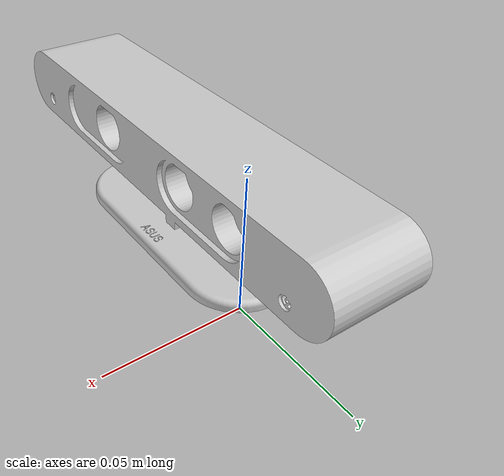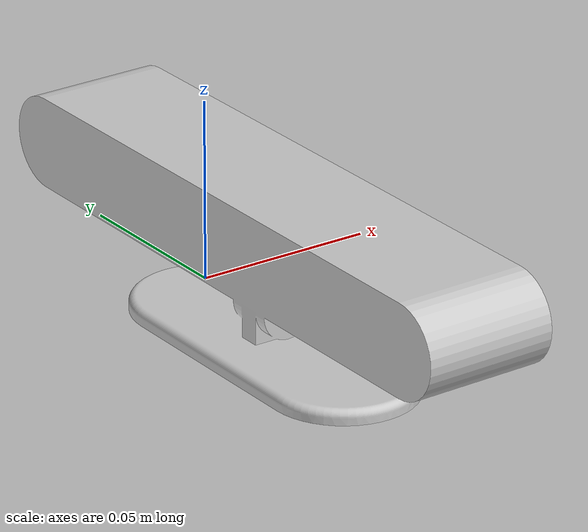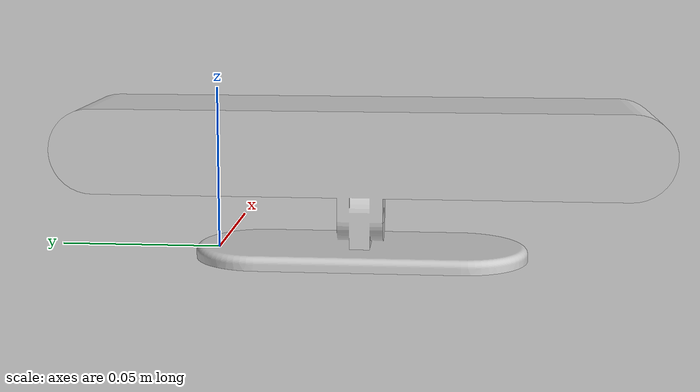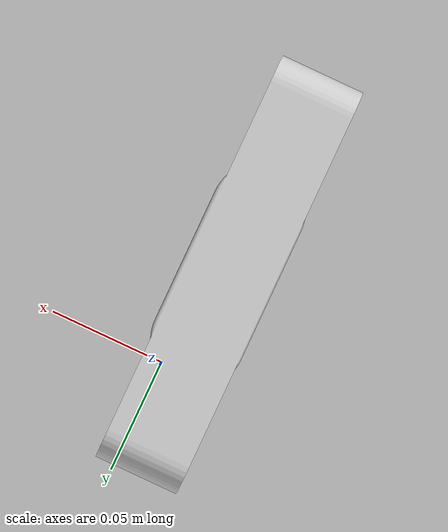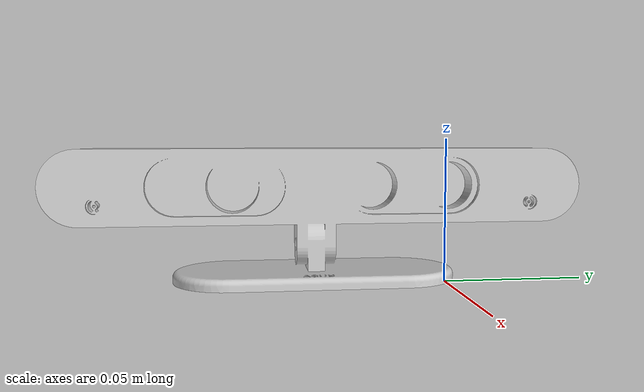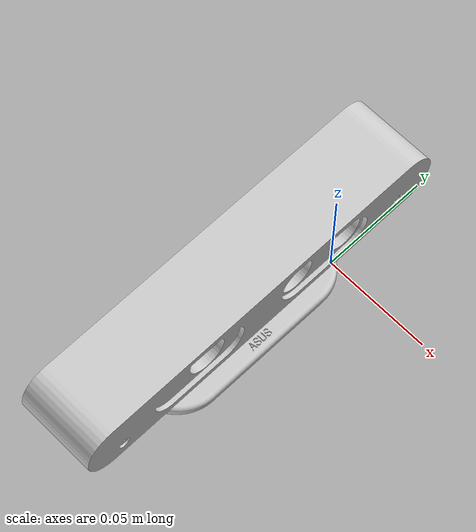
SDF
<?xml version="1.0" ?>
<sdf version="1.5">
	<model name="asus_xtion_pro_live_sensor">
		<static>1</static>
		<pose>0 0 0.0334 0 0 0</pose>
		<link name="link">
			<inertial>
				<mass>0.1</mass>
			</inertial>
			<collision name="collision">
				<pose>-0.01 -0.045 -0.01 0 0 0</pose>
				<geometry>
					<box>
						<size>0.04 0.18 0.0468</size>
					</box>
				</geometry>
			</collision>
			<visual name="visual">
				<transparency>0</transparency>
				<geometry>
					<mesh>
						<uri>model://asus_xtion_pro_live_sensor/meshes/asus_xtion_pro_live_sensor.stl</uri>
					</mesh>
				</geometry>
				<material>
					<script>
						<name>SensorPlacementOptimization/LightGray</name>
						<uri>file://materials/sensor_placement_optimization.material</uri>
					</script>
				</material>
			</visual>
			<sensor name="sensor" type="depth">
				<update_rate>30</update_rate>
				<camera>
					<horizontal_fov>1.01229</horizontal_fov>
					<image>
						<width>640</width>
						<height>480</height>
						<format>B8G8R8</format>
					</image>
					<clip>
						<near>0.5</near>
						<far>3.5</far>
					</clip>
				</camera>
			</sensor>
		</link>
	</model>
</sdf>
